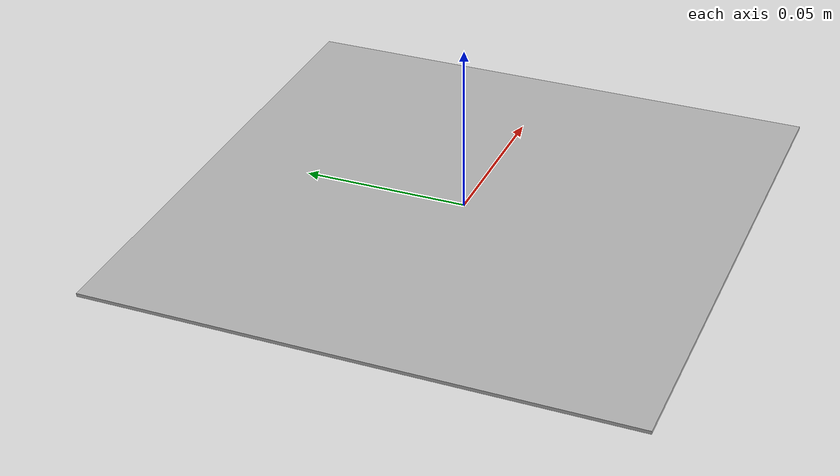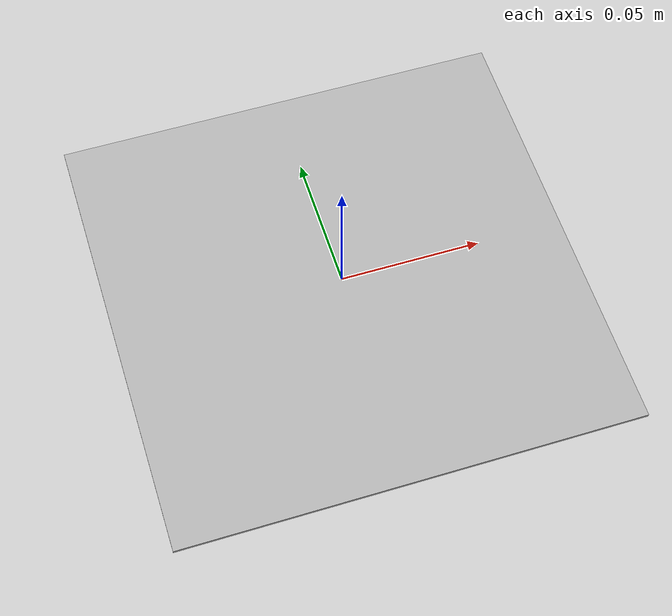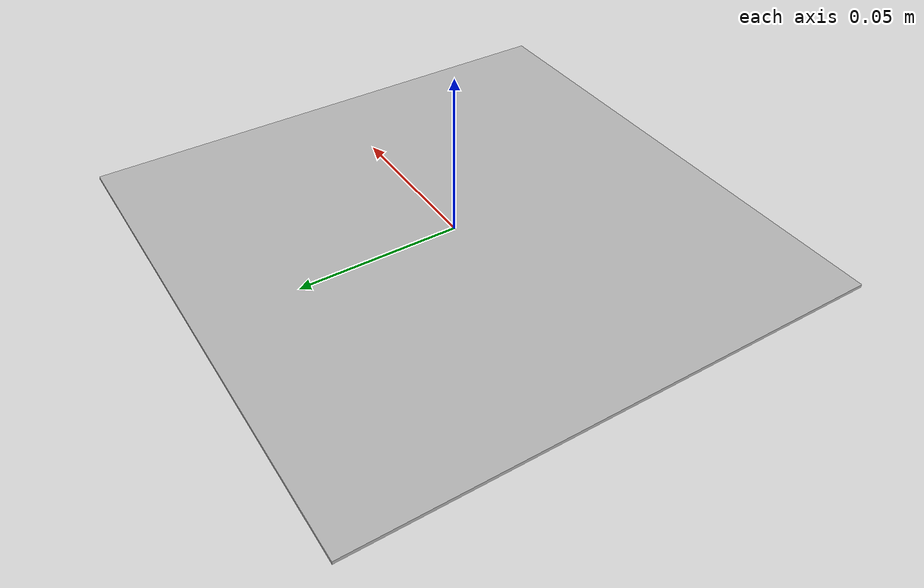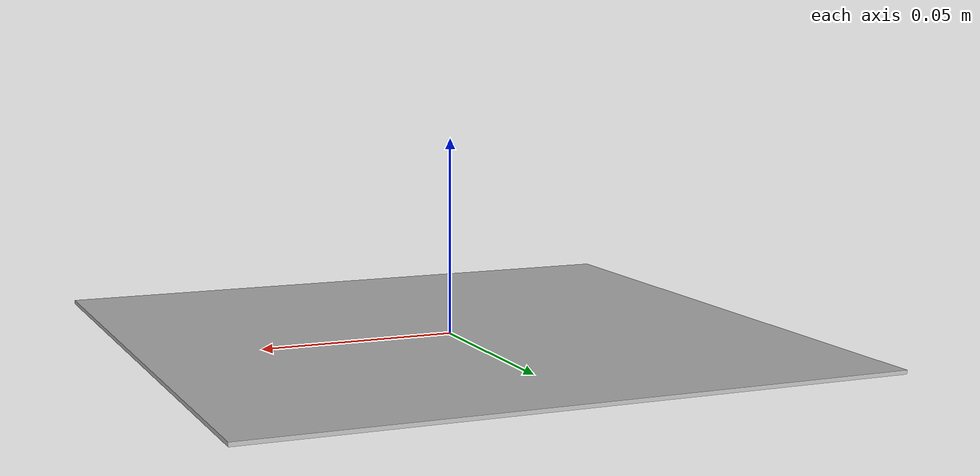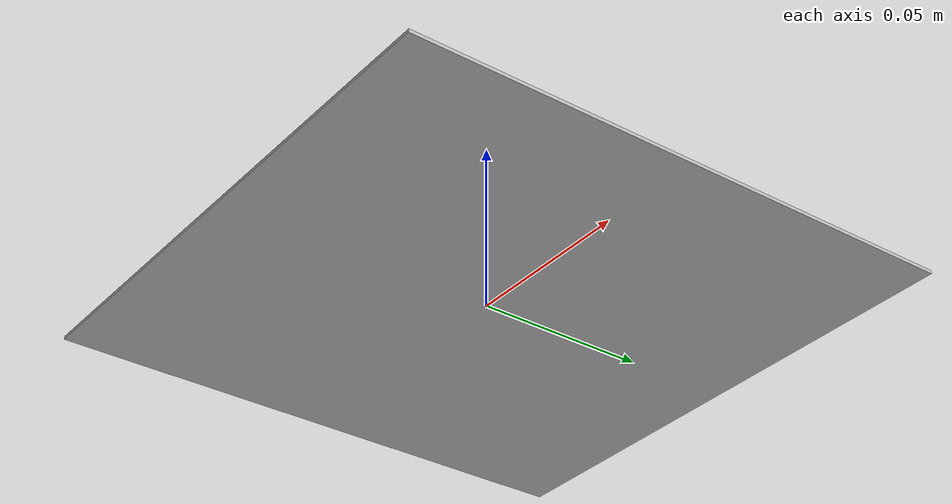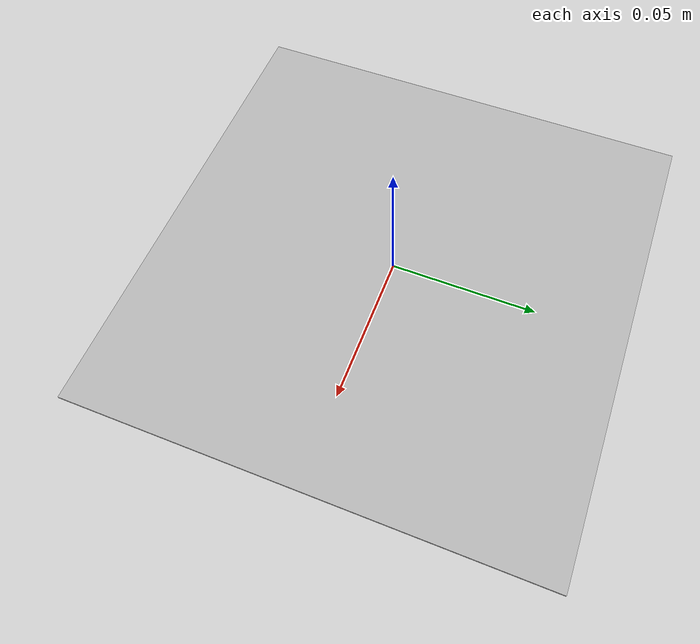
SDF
<?xml version='1.0'?>
<sdf version='1.6'>
  <model name='Tag0'>
    <static>true</static>
    <pose frame=''>0 0 0 -1.5708 0 0</pose>
    <link name='link'>
      <pose frame=''>0 0 0 0 0 0</pose>
      <self_collide>0</self_collide>
      <kinematic>0</kinematic>
      <gravity>0</gravity>
      <visual name='visual'>
        <pose frame=''>0 0 0 0 0 0</pose>
        <cast_shadows>false</cast_shadows>
        <geometry>
          <box>
            <size>0.1615 0.001 0.1615</size>
          </box>
        </geometry>
        <material>
          <script>
            <uri>model://Tag0/materials/scripts</uri>
            <uri>model://Tag0/materials/textures</uri>
            <name>vrc/Tag0</name>
          </script>
        </material>
      </visual>
      <collision name='collision'>
        <pose frame=''>0 0 0 0 0 0</pose>
        <geometry>
          <box>
            <size>0.1615 0.001 0.1615</size>
          </box>
        </geometry>
      </collision>
    </link>
  </model>
</sdf>
